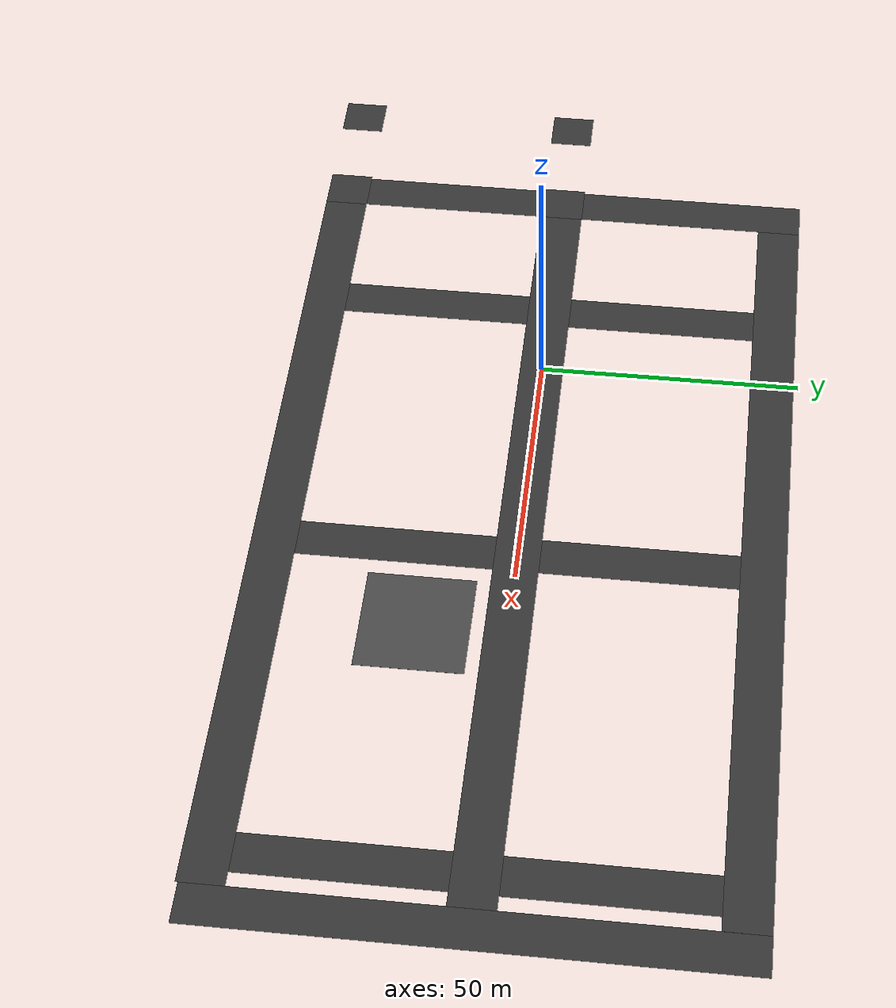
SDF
<sdf version="1.6">
 <world name="default">
  <scene>
   <grid>false</grid>
   <origin_visual>false</origin_visual>
   <ambient>0.85 0.85 0.85 1</ambient>
   <sky><clouds><speed>12</speed></clouds></sky>
   <background>0.35 0.35 0.35 1.0</background>
  </scene>
  <physics name="default_physics" default="0" type="ode">
   <max_step_size>0.005</max_step_size>
   <real_time_factor>1</real_time_factor>
   <real_time_update_rate>200</real_time_update_rate>
  </physics>
  <light type="directional" name="sun">
   <pose>0 0 1000 0 0 0</pose>
   <diffuse>0.8 0.8 0.8 1</diffuse>
   <specular>0.5 0.5 0.5 1</specular>
   <attenuation>
    <range>1000</range>
    <constant>0.9</constant>
    <linear>0.01</linear>
    <quadratic>0.001</quadratic>
   </attenuation>
   <direction>-0.5 0.1 -0.4</direction>
  </light>
  <model name="ground_plane">
   <static>true</static>
   <link name="link">
    <collision name="collision">
     <geometry><plane><normal>0 0 1</normal><size>100 100</size></plane></geometry>
     <surface><friction><ode><mu>100</mu><mu2>50</mu2></ode></friction></surface>
    </collision>
   </link>
  </model>
  <model name="road_y_1">
   <static>true</static>
   <pose>-45 0.25 0.01 0 0 1.5708</pose>
   <link name="link">
    <collision name="collision"><geometry><box><size>97.9 7.4 0.02</size></box></geometry></collision>
    <visual name="visual">
     <cast_shadows>false</cast_shadows>
     <geometry><box><size>97.9 7.4 0.02</size></box></geometry>
     <material>
      <ambient>0.18 0.18 0.18 1</ambient>
      <diffuse>0.22 0.22 0.22 1</diffuse>
      <specular>0.01 0.01 0.01 1</specular>
     </material>
    </visual>
   </link>
  </model>
  <model name="road_y_2">
   <static>true</static>
   <pose>-15 0.25 0.01 0 0 1.5708</pose>
   <link name="link">
    <collision name="collision"><geometry><box><size>97.9 7.4 0.02</size></box></geometry></collision>
    <visual name="visual">
     <cast_shadows>false</cast_shadows>
     <geometry><box><size>97.9 7.4 0.02</size></box></geometry>
     <material>
      <ambient>0.18 0.18 0.18 1</ambient>
      <diffuse>0.22 0.22 0.22 1</diffuse>
      <specular>0.01 0.01 0.01 1</specular>
     </material>
    </visual>
   </link>
  </model>
  <model name="road_y_3">
   <static>true</static>
   <pose>45 0.25 0.01 0 0 1.5708</pose>
   <link name="link">
    <collision name="collision"><geometry><box><size>97.9 7.4 0.02</size></box></geometry></collision>
    <visual name="visual">
     <cast_shadows>false</cast_shadows>
     <geometry><box><size>97.9 7.4 0.02</size></box></geometry>
     <material>
      <ambient>0.18 0.18 0.18 1</ambient>
      <diffuse>0.22 0.22 0.22 1</diffuse>
      <specular>0.01 0.01 0.01 1</specular>
     </material>
    </visual>
   </link>
  </model>
  <model name="road_y_4">
   <static>true</static>
   <pose>110 0.25 0.01 0 0 1.5708</pose>
   <link name="link">
    <collision name="collision"><geometry><box><size>97.9 7.4 0.02</size></box></geometry></collision>
    <visual name="visual">
     <cast_shadows>false</cast_shadows>
     <geometry><box><size>97.9 7.4 0.02</size></box></geometry>
     <material>
      <ambient>0.18 0.18 0.18 1</ambient>
      <diffuse>0.22 0.22 0.22 1</diffuse>
      <specular>0.01 0.01 0.01 1</specular>
     </material>
    </visual>
   </link>
  </model>
  <model name="road_y_5">
   <static>true</static>
   <pose>120 0.25 0.01 0 0 1.5708</pose>
   <link name="link">
    <collision name="collision"><geometry><box><size>97.9 7.4 0.02</size></box></geometry></collision>
    <visual name="visual">
     <cast_shadows>false</cast_shadows>
     <geometry><box><size>97.9 7.4 0.02</size></box></geometry>
     <material>
      <ambient>0.18 0.18 0.18 1</ambient>
      <diffuse>0.22 0.22 0.22 1</diffuse>
      <specular>0.01 0.01 0.01 1</specular>
     </material>
    </visual>
   </link>
  </model>
  <model name="road_x_1">
   <static>true</static>
   <pose>37.5 -45 0.015 0 0 0</pose>
   <link name="link">
    <collision name="collision"><geometry><box><size>157.6 8.4 0.02</size></box></geometry></collision>
    <visual name="visual">
     <cast_shadows>false</cast_shadows>
     <geometry><box><size>157.6 8.4 0.02</size></box></geometry>
     <material>
      <ambient>0.18 0.18 0.18 1</ambient>
      <diffuse>0.22 0.22 0.22 1</diffuse>
      <specular>0.01 0.01 0.01 1</specular>
     </material>
    </visual>
   </link>
  </model>
  <model name="road_x_2">
   <static>true</static>
   <pose>37.5 0 0.015 0 0 0</pose>
   <link name="link">
    <collision name="collision"><geometry><box><size>157.6 8.4 0.02</size></box></geometry></collision>
    <visual name="visual">
     <cast_shadows>false</cast_shadows>
     <geometry><box><size>157.6 8.4 0.02</size></box></geometry>
     <material>
      <ambient>0.18 0.18 0.18 1</ambient>
      <diffuse>0.22 0.22 0.22 1</diffuse>
      <specular>0.01 0.01 0.01 1</specular>
     </material>
    </visual>
   </link>
  </model>
  <model name="road_bridge_conn_south">
   <static>true</static>
   <pose>-45.3 -45 0.015 0 0 0</pose>
   <link name="link">
    <collision name="collision"><geometry><box><size>8.0 8.4 0.02</size></box></geometry></collision>
    <visual name="visual">
     <cast_shadows>false</cast_shadows>
     <geometry><box><size>8.0 8.4 0.02</size></box></geometry>
     <material>
      <ambient>0.18 0.18 0.18 1</ambient>
      <diffuse>0.22 0.22 0.22 1</diffuse>
      <specular>0.01 0.01 0.01 1</specular>
     </material>
    </visual>
   </link>
  </model>
  <model name="road_bridge_conn_center">
   <static>true</static>
   <pose>-45.3 0 0.015 0 0 0</pose>
   <link name="link">
    <collision name="collision"><geometry><box><size>8.0 8.4 0.02</size></box></geometry></collision>
    <visual name="visual">
     <cast_shadows>false</cast_shadows>
     <geometry><box><size>8.0 8.4 0.02</size></box></geometry>
     <material>
      <ambient>0.18 0.18 0.18 1</ambient>
      <diffuse>0.22 0.22 0.22 1</diffuse>
      <specular>0.01 0.01 0.01 1</specular>
     </material>
    </visual>
   </link>
  </model>
  <model name="road_bridge_conn_south_west">
   <static>true</static>
   <pose>-67.2 -45 0.015 0 0 0</pose>
   <link name="link">
    <collision name="collision"><geometry><box><size>8.0 8.4 0.02</size></box></geometry></collision>
    <visual name="visual">
     <cast_shadows>false</cast_shadows>
     <geometry><box><size>8.0 8.4 0.02</size></box></geometry>
     <material>
      <ambient>0.18 0.18 0.18 1</ambient>
      <diffuse>0.22 0.22 0.22 1</diffuse>
      <specular>0.01 0.01 0.01 1</specular>
     </material>
    </visual>
   </link>
  </model>
  <model name="road_bridge_conn_center_west">
   <static>true</static>
   <pose>-67.2 0 0.015 0 0 0</pose>
   <link name="link">
    <collision name="collision"><geometry><box><size>8.0 8.4 0.02</size></box></geometry></collision>
    <visual name="visual">
     <cast_shadows>false</cast_shadows>
     <geometry><box><size>8.0 8.4 0.02</size></box></geometry>
     <material>
      <ambient>0.18 0.18 0.18 1</ambient>
      <diffuse>0.22 0.22 0.22 1</diffuse>
      <specular>0.01 0.01 0.01 1</specular>
     </material>
    </visual>
   </link>
  </model>
  <model name="road_x_3">
   <static>true</static>
   <pose>37.5 45 0.015 0 0 0</pose>
   <link name="link">
    <collision name="collision"><geometry><box><size>157.6 8.4 0.02</size></box></geometry></collision>
    <visual name="visual">
     <cast_shadows>false</cast_shadows>
     <geometry><box><size>157.6 8.4 0.02</size></box></geometry>
     <material>
      <ambient>0.18 0.18 0.18 1</ambient>
      <diffuse>0.22 0.22 0.22 1</diffuse>
      <specular>0.01 0.01 0.01 1</specular>
     </material>
    </visual>
   </link>
  </model>
  <model name="asphalt_plane_74">
   <static>true</static>
   <pose>61.581
    -16.664
    0
    0
    0
    0</pose>
   <link name="link">
    <visual name="visual">
     <geometry><box><size>20
            20
            0.05</size></box></geometry>
     <material>
      <script>
       <uri>model://asphalt_plane/materials/scripts</uri>
       <uri>model://asphalt_plane/materials/textures</uri>
       <name>vrc/asphalt</name>
      </script>
     </material>
    </visual>
   </link>
  </model>
 </world>
</sdf>
